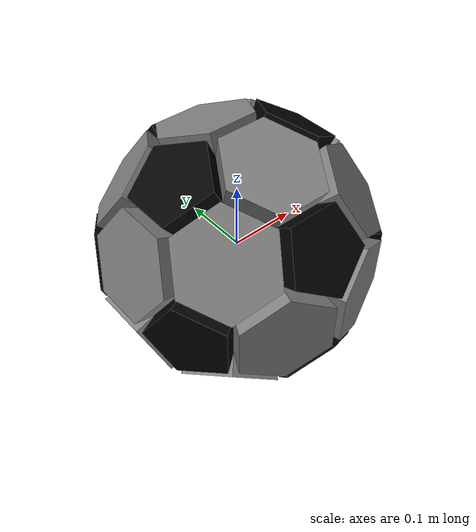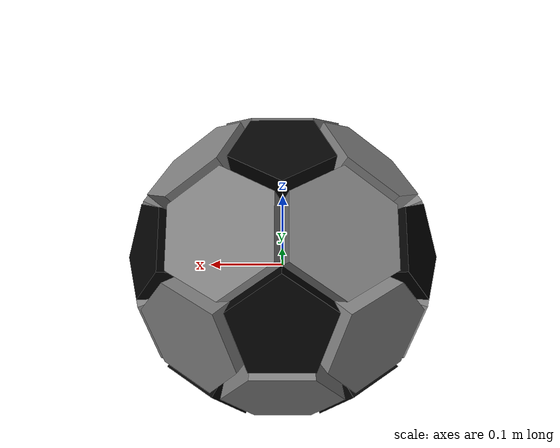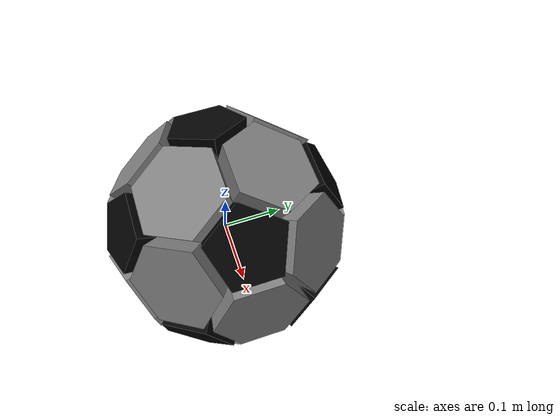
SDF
<?xml version="1.0" ?>
<sdf version="1.4">
  <model name="extra_ball">
    <link name="link">
      <visual name="visual">
        <pose>0 0 0 0 0 0.0</pose>
        <geometry>
          <mesh>
            <scale>0.2 0.2 0.2</scale>
            <uri>model://extra_ball/meshes/Ball DAE.dae</uri>
          </mesh>
        </geometry>
      </visual>
    </link>
    <static>1</static>
  </model>
</sdf>
